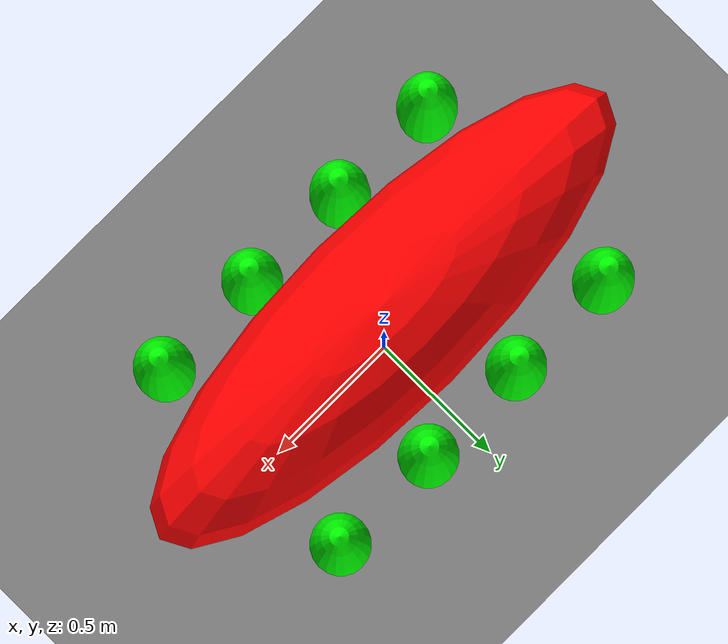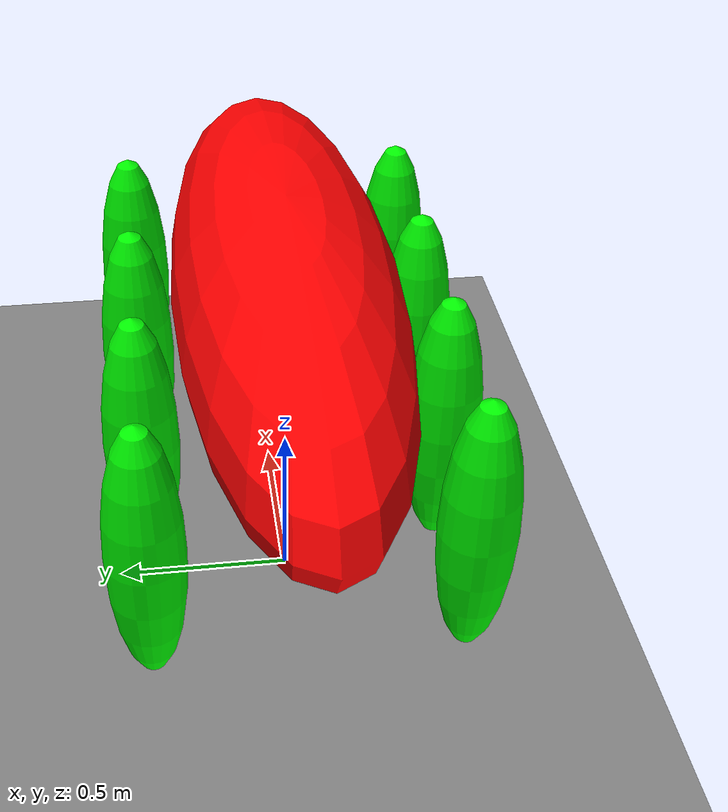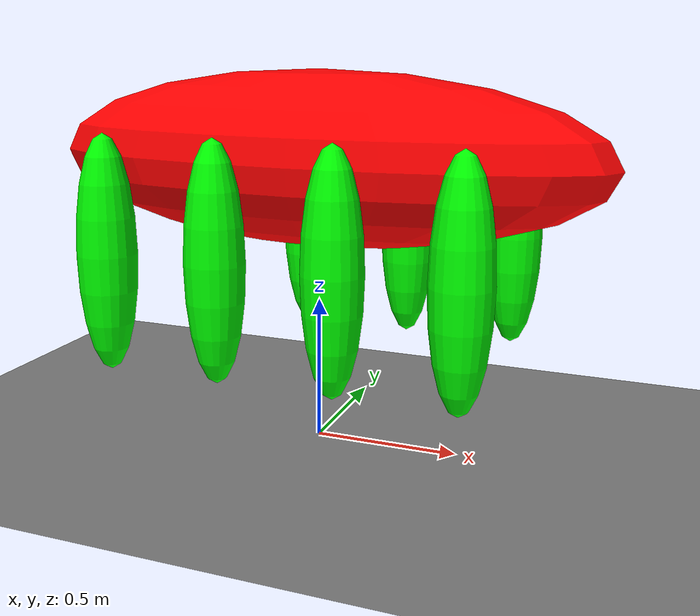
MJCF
<mujoco model="unnamed_model">
  <option timestep="0.01"/>
  <visual>
    <headlight ambient="0.5 0.5 0.5"/>
  </visual>
  <default>
    <default class="/"/>
  </default>
  <worldbody>
    <light name="//unnamed_light_0" class="/" pos="0 0 5" dir="0 0 -1" diffuse="0.5 0.5 0.5"/>
    <geom name="//unnamed_geom_0" class="/" type="plane" size="25 25 0.01"/>
    <body name="abdomen" pos="0 0 1">
      <joint name="//unnamed_joint_0" class="/" type="free"/>
      <geom name="//unnamed_geom_1" class="/" type="ellipsoid" size="1 0.29999999999999999 0.29999999999999999" rgba="1 0 0 1" pos="0 0 0"/>
      <body name="leftLeg0" pos="-0.59999999999999998 0.40000000000000002 -0.29999999999999999">
        <geom name="//unnamed_geom_2" class="/" type="ellipsoid" size="0.10000000000000001 0.10000000000000001 0.40000000000000002" rgba="0 1 0 1"/>
        <joint name="leftLeg1Joint" class="/" type="hinge" pos="0 0.29999999999999999 0.29999999999999999" axis="0 1 0" limited="true" range="-270 270"/>
      </body>
      <body name="rightLeg0" pos="-0.59999999999999998 -0.40000000000000002 -0.29999999999999999">
        <geom name="//unnamed_geom_3" class="/" type="ellipsoid" size="0.10000000000000001 0.10000000000000001 0.40000000000000002" rgba="0 1 0 1"/>
        <joint name="rightLeg1Joint" class="/" type="hinge" pos="0 -0.29999999999999999 0.29999999999999999" axis="0 1 0" range="-360 360"/>
      </body>
      <body name="leftLeg1" pos="-0.19999999999999996 0.40000000000000002 -0.29999999999999999">
        <geom name="//unnamed_geom_4" class="/" type="ellipsoid" size="0.10000000000000001 0.10000000000000001 0.40000000000000002" rgba="0 1 0 1"/>
        <joint name="leftLeg2Joint" class="/" type="hinge" pos="0 0.29999999999999999 0.29999999999999999" axis="0 1 0" limited="true" range="-270 270"/>
      </body>
      <body name="rightLeg1" pos="-0.19999999999999996 -0.40000000000000002 -0.29999999999999999">
        <geom name="//unnamed_geom_5" class="/" type="ellipsoid" size="0.10000000000000001 0.10000000000000001 0.40000000000000002" rgba="0 1 0 1"/>
        <joint name="rightLeg2Joint" class="/" type="hinge" pos="0 -0.29999999999999999 0.29999999999999999" axis="0 1 0" range="-360 360"/>
      </body>
      <body name="leftLeg2" pos="0.20000000000000018 0.40000000000000002 -0.29999999999999999">
        <geom name="//unnamed_geom_6" class="/" type="ellipsoid" size="0.10000000000000001 0.10000000000000001 0.40000000000000002" rgba="0 1 0 1"/>
        <joint name="leftLeg3Joint" class="/" type="hinge" pos="0 0.29999999999999999 0.29999999999999999" axis="0 1 0" limited="true" range="-270 270"/>
      </body>
      <body name="rightLeg2" pos="0.20000000000000018 -0.40000000000000002 -0.29999999999999999">
        <geom name="//unnamed_geom_7" class="/" type="ellipsoid" size="0.10000000000000001 0.10000000000000001 0.40000000000000002" rgba="0 1 0 1"/>
        <joint name="rightLeg3Joint" class="/" type="hinge" pos="0 -0.29999999999999999 0.29999999999999999" axis="0 1 0" range="-360 360"/>
      </body>
      <body name="leftLeg3" pos="0.60000000000000009 0.40000000000000002 -0.29999999999999999">
        <geom name="//unnamed_geom_8" class="/" type="ellipsoid" size="0.10000000000000001 0.10000000000000001 0.40000000000000002" rgba="0 1 0 1"/>
        <joint name="leftLeg4Joint" class="/" type="hinge" pos="0 0.29999999999999999 0.29999999999999999" axis="0 1 0" limited="true" range="-270 270"/>
      </body>
      <body name="rightLeg3" pos="0.60000000000000009 -0.40000000000000002 -0.29999999999999999">
        <geom name="//unnamed_geom_9" class="/" type="ellipsoid" size="0.10000000000000001 0.10000000000000001 0.40000000000000002" rgba="0 1 0 1"/>
        <joint name="rightLeg4Joint" class="/" type="hinge" pos="0 -0.29999999999999999 0.29999999999999999" axis="0 1 0" range="-360 360"/>
      </body>
    </body>
  </worldbody>
  <actuator>
    <motor name="leftMotor1" class="/" ctrllimited="true" ctrlrange="-90 90" gear="5" joint="leftLeg1Joint"/>
    <motor name="rightMotor1" class="/" ctrllimited="true" ctrlrange="-90 90" gear="5" joint="rightLeg1Joint"/>
    <motor name="leftMotor2" class="/" ctrllimited="true" ctrlrange="-90 90" gear="5" joint="leftLeg2Joint"/>
    <motor name="rightMotor2" class="/" ctrllimited="true" ctrlrange="-90 90" gear="5" joint="rightLeg2Joint"/>
    <motor name="leftMotor3" class="/" ctrllimited="true" ctrlrange="-90 90" gear="5" joint="leftLeg3Joint"/>
    <motor name="rightMotor3" class="/" ctrllimited="true" ctrlrange="-90 90" gear="5" joint="rightLeg3Joint"/>
    <motor name="leftMotor4" class="/" ctrllimited="true" ctrlrange="-90 90" gear="5" joint="leftLeg4Joint"/>
    <motor name="rightMotor4" class="/" ctrllimited="true" ctrlrange="-90 90" gear="5" joint="rightLeg4Joint"/>
  </actuator>
</mujoco>
